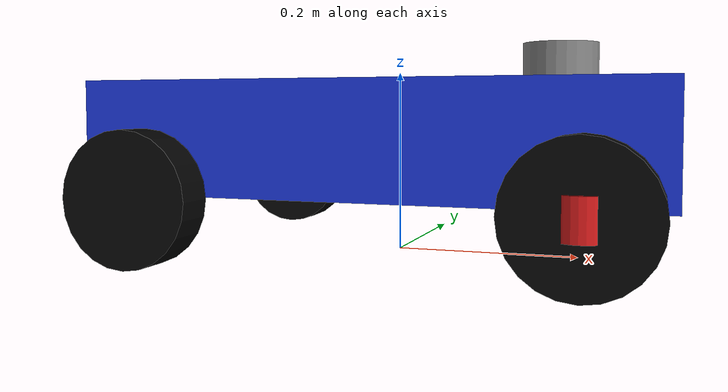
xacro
<?xml version="1.0"?>
<robot name="ackermann_car" xmlns:xacro="http://www.ros.org/wiki/xacro">

  <xacro:arg name="use_ros2_control" default="false"/>
  <xacro:arg name="control_config" default=""/>

  <!-- Parameters -->
  <xacro:property name="base_length" value="0.60"/>
  <xacro:property name="base_width"  value="0.32"/>
  <xacro:property name="base_height" value="0.12"/>
  <xacro:property name="base_mass"   value="5.0"/>

  <xacro:property name="wheel_radius" value="0.07"/>
  <xacro:property name="wheel_width"  value="0.04"/>
  <xacro:property name="wheel_mass"   value="0.25"/>

  <xacro:property name="steer_link_radius" value="0.025"/>
  <xacro:property name="steer_link_length" value="0.04"/>
  <xacro:property name="steer_link_mass"   value="0.10"/>

  <xacro:property name="laser_radius" value="0.04"/>
  <xacro:property name="laser_height" value="0.04"/>
  <xacro:property name="laser_mass"   value="0.10"/>

  <xacro:property name="front_x" value="0.22"/>
  <xacro:property name="rear_x"  value="-0.22"/>
  <xacro:property name="left_y"  value="0.19"/>
  <xacro:property name="right_y" value="-0.19"/>

  <!-- Materials -->
  <material name="blue">
    <color rgba="0.1 0.2 0.8 1.0"/>
  </material>

  <material name="black">
    <color rgba="0.02 0.02 0.02 1.0"/>
  </material>

  <material name="gray">
    <color rgba="0.5 0.5 0.5 1.0"/>
  </material>

  <material name="red">
    <color rgba="0.8 0.1 0.1 1.0"/>
  </material>

  <!-- Inertia Macros -->
  <xacro:macro name="box_inertia" params="m x y z">
    <inertial>
      <origin xyz="0 0 0" rpy="0 0 0"/>
      <mass value="${m}"/>
      <inertia
        ixx="${m / 12.0 * (y * y + z * z)}"
        ixy="0.0"
        ixz="0.0"
        iyy="${m / 12.0 * (x * x + z * z)}"
        iyz="0.0"
        izz="${m / 12.0 * (x * x + y * y)}"/>
    </inertial>
  </xacro:macro>

  <!-- wheel axis is Y -->
  <xacro:macro name="wheel_inertia_y_axis" params="m r l">
    <inertial>
      <origin xyz="0 0 0" rpy="0 0 0"/>
      <mass value="${m}"/>
      <inertia
        ixx="${m / 12.0 * (3.0 * r * r + l * l)}"
        ixy="0.0"
        ixz="0.0"
        iyy="${0.5 * m * r * r}"
        iyz="0.0"
        izz="${m / 12.0 * (3.0 * r * r + l * l)}"/>
    </inertial>
  </xacro:macro>

  <!-- small steering cylinder axis is Z -->
  <xacro:macro name="cylinder_inertia_z_axis" params="m r l">
    <inertial>
      <origin xyz="0 0 0" rpy="0 0 0"/>
      <mass value="${m}"/>
      <inertia
        ixx="${m / 12.0 * (3.0 * r * r + l * l)}"
        ixy="0.0"
        ixz="0.0"
        iyy="${m / 12.0 * (3.0 * r * r + l * l)}"
        iyz="0.0"
        izz="${0.5 * m * r * r}"/>
    </inertial>
  </xacro:macro>

  <!-- Base Link -->
  <link name="base_footprint"/>

  <joint name="base_footprint_joint" type="fixed">
    <parent link="base_footprint"/>
    <child link="base_link"/>
    <origin xyz="0 0 ${wheel_radius + base_height / 2.0}" rpy="0 0 0"/>
  </joint>

  <link name="base_link">
    <visual>
      <origin xyz="0 0 0" rpy="0 0 0"/>
      <geometry>
        <box size="${base_length} ${base_width} ${base_height}"/>
      </geometry>
      <material name="blue"/>
    </visual>

    <visual>
      <origin xyz="${rear_x} 0 ${-base_height / 2.0}" rpy="1.5708 0 0"/>
      <geometry>
        <cylinder radius="0.012" length="${left_y - right_y}"/>
      </geometry>
      <material name="gray"/>
    </visual>

    <visual>
      <origin xyz="${front_x} 0 ${-base_height / 2.0}" rpy="1.5708 0 0"/>
      <geometry>
        <cylinder radius="0.012" length="${left_y - right_y}"/>
      </geometry>
      <material name="gray"/>
    </visual>

    <collision>
      <origin xyz="0 0 0" rpy="0 0 0"/>
      <geometry>
        <box size="${base_length} ${base_width} ${base_height}"/>
      </geometry>
    </collision>

    <xacro:box_inertia
      m="${base_mass}"
      x="${base_length}"
      y="${base_width}"
      z="${base_height}"/>
  </link>

  <!-- Front Steering Link Macro -->
  <xacro:macro name="front_steer_module" params="side y">
    <link name="front_${side}_steer_link">
      <visual>
        <origin xyz="0 0 0" rpy="0 0 0"/>
        <geometry>
          <cylinder radius="${steer_link_radius}" length="${steer_link_length}"/>
        </geometry>
        <material name="red"/>
      </visual>

      <collision>
        <origin xyz="0 0 0" rpy="0 0 0"/>
        <geometry>
          <cylinder radius="${steer_link_radius}" length="${steer_link_length}"/>
        </geometry>
      </collision>

      <xacro:cylinder_inertia_z_axis
        m="${steer_link_mass}"
        r="${steer_link_radius}"
        l="${steer_link_length}"/>
    </link>

    <joint name="front_${side}_steer_joint" type="revolute">
      <parent link="base_link"/>
      <child link="front_${side}_steer_link"/>
      <origin xyz="${front_x} ${y} ${-base_height / 2.0}" rpy="0 0 0"/>
      <axis xyz="0 0 1"/>
      <limit lower="-0.6" upper="0.6" effort="10.0" velocity="2.0"/>
    </joint>

    <link name="front_${side}_wheel_link">
      <visual>
        <origin xyz="0 0 0" rpy="1.5708 0 0"/>
        <geometry>
          <cylinder radius="${wheel_radius}" length="${wheel_width}"/>
        </geometry>
        <material name="black"/>
      </visual>

      <collision>
        <origin xyz="0 0 0" rpy="1.5708 0 0"/>
        <geometry>
          <cylinder radius="${wheel_radius}" length="${wheel_width}"/>
        </geometry>
      </collision>

      <xacro:wheel_inertia_y_axis
        m="${wheel_mass}"
        r="${wheel_radius}"
        l="${wheel_width}"/>
    </link>

    <joint name="front_${side}_wheel_joint" type="continuous">
      <parent link="front_${side}_steer_link"/>
      <child link="front_${side}_wheel_link"/>
      <origin xyz="0 0 0" rpy="0 0 0"/>
      <axis xyz="0 1 0"/>
    </joint>
  </xacro:macro>

  <!-- Rear Wheel Macro -->
  <xacro:macro name="rear_wheel" params="side y">
    <link name="rear_${side}_wheel_link">
      <visual>
        <origin xyz="0 0 0" rpy="1.5708 0 0"/>
        <geometry>
          <cylinder radius="${wheel_radius}" length="${wheel_width}"/>
        </geometry>
        <material name="black"/>
      </visual>

      <collision>
        <origin xyz="0 0 0" rpy="1.5708 0 0"/>
        <geometry>
          <cylinder radius="${wheel_radius}" length="${wheel_width}"/>
        </geometry>
      </collision>

      <xacro:wheel_inertia_y_axis
        m="${wheel_mass}"
        r="${wheel_radius}"
        l="${wheel_width}"/>
    </link>

    <joint name="rear_${side}_wheel_joint" type="continuous">
      <parent link="base_link"/>
      <child link="rear_${side}_wheel_link"/>
      <origin xyz="${rear_x} ${y} ${-base_height / 2.0}" rpy="0 0 0"/>
      <axis xyz="0 1 0"/>
    </joint>
  </xacro:macro>

  <!-- Instantiate Wheels -->
  <xacro:front_steer_module side="left"  y="${left_y}"/>
  <xacro:front_steer_module side="right" y="${right_y}"/>

  <xacro:rear_wheel side="left"  y="${left_y}"/>
  <xacro:rear_wheel side="right" y="${right_y}"/>

  <!-- Laser Placeholder -->
  <link name="laser_link">
    <visual>
      <origin xyz="0 0 0" rpy="0 0 0"/>
      <geometry>
        <cylinder radius="${laser_radius}" length="${laser_height}"/>
      </geometry>
      <material name="gray"/>
    </visual>

    <collision>
      <origin xyz="0 0 0" rpy="0 0 0"/>
      <geometry>
        <cylinder radius="${laser_radius}" length="${laser_height}"/>
      </geometry>
    </collision>

    <xacro:cylinder_inertia_z_axis m="${laser_mass}" r="${laser_radius}" l="${laser_height}"/>
  </link>

  <joint name="laser_joint" type="fixed">
    <parent link="base_link"/>
    <child link="laser_link"/>
    <origin xyz="0.18 0 ${base_height / 2.0 + laser_height / 2.0}" rpy="0 0 0"/>
  </joint>

  <!-- Gazebo Materials -->
  <gazebo reference="base_link">
    <material>Gazebo/Blue</material>
  </gazebo>

  <gazebo reference="front_left_steer_link">
    <material>Gazebo/Red</material>
  </gazebo>

  <gazebo reference="front_right_steer_link">
    <material>Gazebo/Red</material>
  </gazebo>

  <gazebo reference="front_left_wheel_link">
    <material>Gazebo/Black</material>
  </gazebo>

  <gazebo reference="front_right_wheel_link">
    <material>Gazebo/Black</material>
  </gazebo>

  <gazebo reference="rear_left_wheel_link">
    <material>Gazebo/Black</material>
  </gazebo>

  <gazebo reference="rear_right_wheel_link">
    <material>Gazebo/Black</material>
  </gazebo>

  <gazebo reference="laser_link">
    <material>Gazebo/Grey</material>
  </gazebo>

  <!-- ros2_control for Gazebo -->
  <xacro:if value="$(arg use_ros2_control)">

    <ros2_control name="GazeboSystem" type="system">
      <hardware>
        <plugin>gazebo_ros2_control/GazeboSystem</plugin>
      </hardware>

      <joint name="front_left_steer_joint">
        <command_interface name="position">
          <param name="min">-0.6</param>
          <param name="max">0.6</param>
        </command_interface>
        <state_interface name="position"/>
        <state_interface name="velocity"/>
      </joint>

      <joint name="front_right_steer_joint">
        <command_interface name="position">
          <param name="min">-0.6</param>
          <param name="max">0.6</param>
        </command_interface>
        <state_interface name="position"/>
        <state_interface name="velocity"/>
      </joint>

      <joint name="front_left_wheel_joint">
        <state_interface name="position"/>
        <state_interface name="velocity"/>
      </joint>

      <joint name="front_right_wheel_joint">
        <state_interface name="position"/>
        <state_interface name="velocity"/>
      </joint>

      <joint name="rear_left_wheel_joint">
        <command_interface name="velocity">
          <param name="min">-20.0</param>
          <param name="max">20.0</param>
        </command_interface>
        <state_interface name="position"/>
        <state_interface name="velocity"/>
      </joint>

      <joint name="rear_right_wheel_joint">
        <command_interface name="velocity">
          <param name="min">-20.0</param>
          <param name="max">20.0</param>
        </command_interface>
        <state_interface name="position"/>
        <state_interface name="velocity"/>
      </joint>
    </ros2_control>

    <gazebo>
      <plugin name="gazebo_ros2_control" filename="libgazebo_ros2_control.so">
        <robot_param>robot_description</robot_param>
        <robot_param_node>robot_state_publisher</robot_param_node>
        <parameters>$(arg control_config)</parameters>
      </plugin>
    </gazebo>

  </xacro:if>

</robot>
